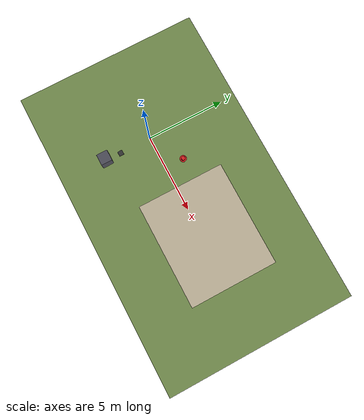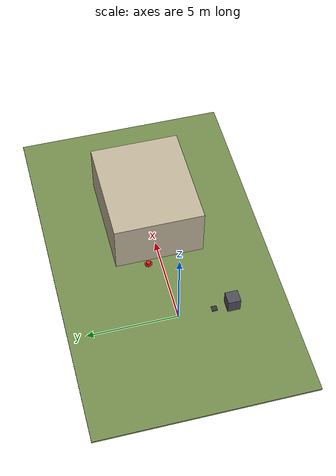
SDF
<sdf version="1.10">
 <world name="yard_base">
  <physics name="default" type="ode">
   <max_step_size>0.004</max_step_size>
   <real_time_factor>1.0</real_time_factor>
   <real_time_update_rate>250</real_time_update_rate>
  </physics>
  <gravity>0 0 -9.8066</gravity>
  <magnetic_field>6e-06 2.3e-05 -4.2e-05</magnetic_field>
  <atmosphere type="adiabatic"/>
  <spherical_coordinates>
   <surface_model>EARTH_WGS84</surface_model>
   <world_frame_orientation>ENU</world_frame_orientation>
   <latitude_deg>47.397971057728974</latitude_deg>
   <longitude_deg>8.546163739800146</longitude_deg>
   <elevation>0</elevation>
  </spherical_coordinates>
  <scene><ambient>0.85 0.85 0.85 1</ambient><background>0.55 0.70 0.90 1</background><grid>false</grid></scene>
  <light type="directional" name="sun">
   <pose>0 0 15 0 0 0</pose>
   <diffuse>1.0 1.0 0.95 1</diffuse>
   <specular>0.4 0.4 0.4 1</specular>
   <direction>-0.3 0.3 -1</direction>
  </light>
  <model name="ground">
   <static>true</static>
   <pose>4.0 0 -0.05 0 0 0</pose>
   <link name="link">
    <collision name="col"><geometry><box><size>20.0 12.0 0.1</size></box></geometry></collision>
    <visual name="vis">
     <geometry><box><size>20.0 12.0 0.1</size></box></geometry>
     <material><ambient>0.45 0.55 0.30 1</ambient><diffuse>0.45 0.55 0.30 1</diffuse></material>
    </visual>
   </link>
  </model>
  <model name="house">
   <static>true</static>
   <pose>7.0 0 1.5 0 0 0</pose>
   <link name="link">
    <collision name="col"><geometry><box><size>6.0 5.0 3.0</size></box></geometry></collision>
    <visual name="vis">
     <geometry><box><size>6.0 5.0 3.0</size></box></geometry>
     <material><ambient>0.75 0.70 0.60 1</ambient><diffuse>0.75 0.70 0.60 1</diffuse></material>
    </visual>
   </link>
  </model>
  <model name="user_wheelchair">
   <static>true</static>
   <pose>0.0 -3.0 0.35 0 0 0</pose>
   <link name="link">
    <collision name="col"><geometry><box><size>0.7 0.7 0.9</size></box></geometry></collision>
    <visual name="vis">
     <geometry><box><size>0.7 0.7 0.9</size></box></geometry>
     <material><ambient>0.30 0.30 0.35 1</ambient><diffuse>0.30 0.30 0.35 1</diffuse></material>
    </visual>
   </link>
  </model>
  <model name="dock">
   <static>true</static>
   <pose>0.0 -2.0 0.025 0 0 0</pose>
   <link name="link">
    <collision name="col"><geometry><box><size>0.3 0.3 0.05</size></box></geometry></collision>
    <visual name="vis">
     <geometry><box><size>0.3 0.3 0.05</size></box></geometry>
     <material><ambient>0.20 0.20 0.20 1</ambient><diffuse>0.20 0.20 0.20 1</diffuse></material>
    </visual>
   </link>
  </model>
  <model name="child_red_shirt">
   <static>true</static>
   <pose>1.0 0.0 0.53 0 0 0</pose>
   <link name="link">
    <collision name="col">
     <geometry><capsule><radius>0.18</radius><length>0.7</length></capsule></geometry>
    </collision>
   </link>
  </model>
  <model name="adult_red_hat">
   <static>true</static>
   <pose>2.5 1.0 0.85 0 0 0</pose>
   <link name="body">
    <collision name="col">
     <geometry><capsule><radius>0.25</radius><length>1.2</length></capsule></geometry>
    </collision>
   </link>
  </model>
  <model name="adult_red_hat_cap">
   <static>true</static>
   <pose>2.5 1.0 0 0 0 0</pose>
   <link name="link">
    <visual name="crown">
     <pose>0 0 1.87 0 0 0</pose>
     <geometry><cylinder><radius>0.115</radius><length>0.14</length></cylinder></geometry>
     <material><ambient>0.85 0.12 0.12 1</ambient><diffuse>0.85 0.12 0.12 1</diffuse></material>
    </visual>
    <visual name="brim">
     <pose>0 0 1.80 0 0 0</pose>
     <geometry><cylinder><radius>0.20</radius><length>0.025</length></cylinder></geometry>
     <material><ambient>0.80 0.10 0.10 1</ambient><diffuse>0.80 0.10 0.10 1</diffuse></material>
    </visual>
   </link>
  </model>
  <model name="adult_green">
   <static>true</static>
   <pose>-1.0 2.0 0.85 0 0 0</pose>
   <link name="link">
    <collision name="col">
     <geometry><capsule><radius>0.25</radius><length>1.2</length></capsule></geometry>
    </collision>
   </link>
  </model>
  <model name="adult_blue">
   <static>true</static>
   <pose>3.0 -1.5 0.85 0 0 0</pose>
   <link name="link">
    <collision name="col">
     <geometry><capsule><radius>0.25</radius><length>1.2</length></capsule></geometry>
    </collision>
   </link>
  </model>
  <model name="adult_white">
   <static>true</static>
   <pose>0.5 3.0 0.85 0 0 0</pose>
   <link name="link">
    <collision name="col">
     <geometry><capsule><radius>0.25</radius><length>1.2</length></capsule></geometry>
    </collision>
   </link>
  </model>
 </world>
</sdf>
